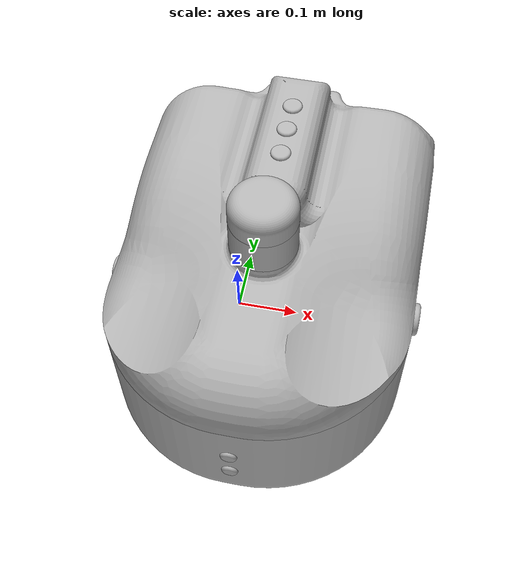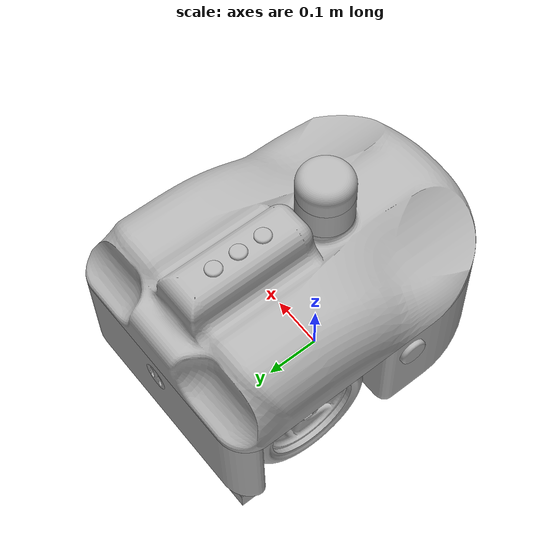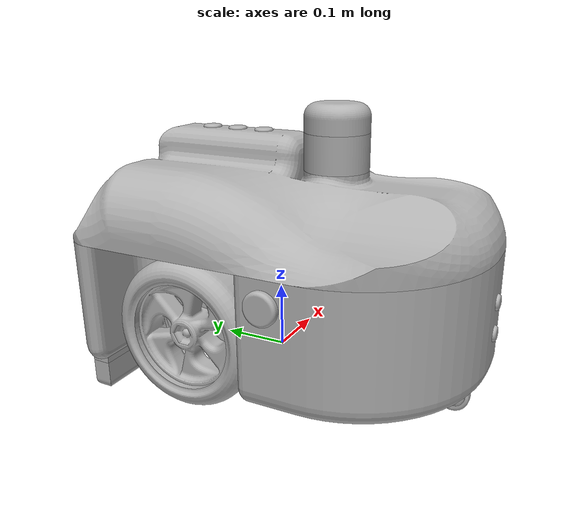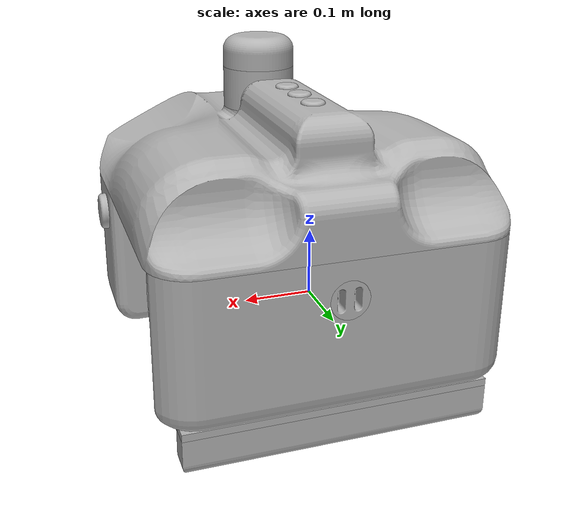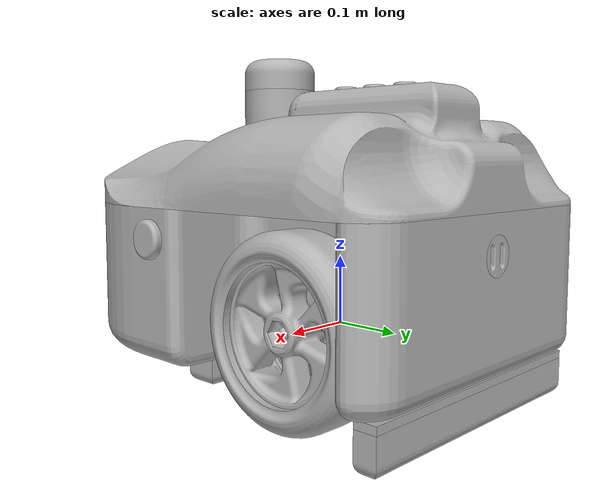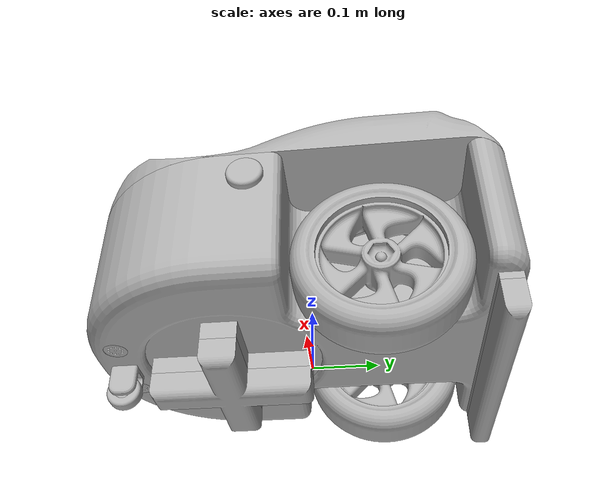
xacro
<?xml version="1.0" ?>
<robot name="cleaning" xmlns:xacro="http://www.ros.org/wiki/xacro">

<xacro:include filename="$(find cleaning_description)/urdf/materials.xacro" />
<xacro:include filename="$(find cleaning_description)/urdf/cleaning.trans" />
<xacro:include filename="$(find cleaning_description)/urdf/cleaning.gazebo" />
<link name="base_link">
  <inertial>
    <origin xyz="0.058313304303346955 -0.015230594439995492 0.05613540854001533" rpy="0 0 0"/>
    <mass value="54.76161083841736"/>
    <inertia ixx="2.371896" iyy="1.181941" izz="3.1265" ixy="-0.0" iyz="-0.061127" ixz="-0.0"/>
  </inertial>
  <visual>
    <origin xyz="0 0 0" rpy="0 0 0"/>
    <geometry>
      <mesh filename="package://cleaning_description/meshes/base_link.stl" scale="0.001 0.001 0.001"/>
    </geometry>
    <material name="silver"/>
  </visual>
  <collision>
    <origin xyz="0 0 0" rpy="0 0 0"/>
    <geometry>
      <mesh filename="package://cleaning_description/meshes/base_link.stl" scale="0.001 0.001 0.001"/>
    </geometry>
  </collision>
</link>

<link name="left_motor_1">
  <inertial>
    <origin xyz="0.0016011540332543789 4.1376184034547236e-08 0.05000033555353705" rpy="0 0 0"/>
    <mass value="10.828701584350123"/>
    <inertia ixx="0.02872" iyy="0.017336" izz="0.028375" ixy="0.0" iyz="0.0" ixz="-0.0"/>
  </inertial>
  <visual>
    <origin xyz="-0.112725 -0.108724 0.009452" rpy="0 0 0"/>
    <geometry>
      <mesh filename="package://cleaning_description/meshes/left_motor_1.stl" scale="0.001 0.001 0.001"/>
    </geometry>
    <material name="silver"/>
  </visual>
  <collision>
    <origin xyz="-0.112725 -0.108724 0.009452" rpy="0 0 0"/>
    <geometry>
      <mesh filename="package://cleaning_description/meshes/left_motor_1.stl" scale="0.001 0.001 0.001"/>
    </geometry>
  </collision>
</link>

<link name="right_motor_1">
  <inertial>
    <origin xyz="-0.001601563486938557 4.1376184048425024e-08 0.05000033555353705" rpy="0 0 0"/>
    <mass value="10.82870158435012"/>
    <inertia ixx="0.02872" iyy="0.017336" izz="0.028375" ixy="0.0" iyz="0.0" ixz="0.0"/>
  </inertial>
  <visual>
    <origin xyz="-0.003902 -0.108724 0.009452" rpy="0 0 0"/>
    <geometry>
      <mesh filename="package://cleaning_description/meshes/right_motor_1.stl" scale="0.001 0.001 0.001"/>
    </geometry>
    <material name="silver"/>
  </visual>
  <collision>
    <origin xyz="-0.003902 -0.108724 0.009452" rpy="0 0 0"/>
    <geometry>
      <mesh filename="package://cleaning_description/meshes/right_motor_1.stl" scale="0.001 0.001 0.001"/>
    </geometry>
  </collision>
</link>

<link name="front_motor_1">
  <inertial>
    <origin xyz="2.9527315768135276e-07 3.3957881728774453e-07 0.03450033555353704" rpy="0 0 0"/>
    <mass value="18.760621360506445"/>
    <inertia ixx="0.059152" iyy="0.059152" izz="0.103418" ixy="0.0" iyz="0.0" ixz="0.0"/>
  </inertial>
  <visual>
    <origin xyz="-0.058313 0.111315 -0.021548" rpy="0 0 0"/>
    <geometry>
      <mesh filename="package://cleaning_description/meshes/front_motor_1.stl" scale="0.001 0.001 0.001"/>
    </geometry>
    <material name="silver"/>
  </visual>
  <collision>
    <origin xyz="-0.058313 0.111315 -0.021548" rpy="0 0 0"/>
    <geometry>
      <mesh filename="package://cleaning_description/meshes/front_motor_1.stl" scale="0.001 0.001 0.001"/>
    </geometry>
  </collision>
</link>

<link name="battery_base_1">
  <inertial>
    <origin xyz="0.09203709793147288 -1.2343095048827912e-07 -0.0003199233639099158" rpy="0 0 0"/>
    <mass value="2.9781372134875"/>
    <inertia ixx="0.012406" iyy="0.008632" izz="0.020995" ixy="0.0" iyz="0.0" ixz="0.0"/>
  </inertial>
  <visual>
    <origin xyz="0.033724 -0.103339 -0.095548" rpy="0 0 0"/>
    <geometry>
      <mesh filename="package://cleaning_description/meshes/battery_base_1.stl" scale="0.001 0.001 0.001"/>
    </geometry>
    <material name="silver"/>
  </visual>
  <collision>
    <origin xyz="0.033724 -0.103339 -0.095548" rpy="0 0 0"/>
    <geometry>
      <mesh filename="package://cleaning_description/meshes/battery_base_1.stl" scale="0.001 0.001 0.001"/>
    </geometry>
  </collision>
</link>

<link name="battery_1">
  <inertial>
    <origin xyz="2.9527315793115294e-07 -1.2343095047440134e-07 0.03500033555353704" rpy="0 0 0"/>
    <mass value="14.836499999999997"/>
    <inertia ixx="0.046117" iyy="0.033877" izz="0.067877" ixy="0.0" iyz="0.0" ixz="0.0"/>
  </inertial>
  <visual>
    <origin xyz="-0.058313 -0.103339 -0.099548" rpy="0 0 0"/>
    <geometry>
      <mesh filename="package://cleaning_description/meshes/battery_1.stl" scale="0.001 0.001 0.001"/>
    </geometry>
    <material name="silver"/>
  </visual>
  <collision>
    <origin xyz="-0.058313 -0.103339 -0.099548" rpy="0 0 0"/>
    <geometry>
      <mesh filename="package://cleaning_description/meshes/battery_1.stl" scale="0.001 0.001 0.001"/>
    </geometry>
  </collision>
</link>

<link name="charging_port_1">
  <inertial>
    <origin xyz="-0.00010178009298021651 -0.01617903306030516 3.3555353703973445e-07" rpy="0 0 0"/>
    <mass value="0.37493220914312686"/>
    <inertia ixx="9.5e-05" iyy="0.000129" izz="9.1e-05" ixy="0.0" iyz="0.0" ixz="0.0"/>
  </inertial>
  <visual>
    <origin xyz="-0.058313 -0.288441 -0.131548" rpy="0 0 0"/>
    <geometry>
      <mesh filename="package://cleaning_description/meshes/charging_port_1.stl" scale="0.001 0.001 0.001"/>
    </geometry>
    <material name="silver"/>
  </visual>
  <collision>
    <origin xyz="-0.058313 -0.288441 -0.131548" rpy="0 0 0"/>
    <geometry>
      <mesh filename="package://cleaning_description/meshes/charging_port_1.stl" scale="0.001 0.001 0.001"/>
    </geometry>
  </collision>
</link>

<link name="rear_wiper_motor_1">
  <inertial>
    <origin xyz="2.9527315812544197e-07 5.856211737764738e-09 0.009210861869326485" rpy="0 0 0"/>
    <mass value="0.11714213607072968"/>
    <inertia ixx="1.1e-05" iyy="1.1e-05" izz="1.3e-05" ixy="0.0" iyz="0.0" ixz="-0.0"/>
  </inertial>
  <visual>
    <origin xyz="-0.058313 -0.258441 0.008452" rpy="0 0 0"/>
    <geometry>
      <mesh filename="package://cleaning_description/meshes/rear_wiper_motor_1.stl" scale="0.001 0.001 0.001"/>
    </geometry>
    <material name="silver"/>
  </visual>
  <collision>
    <origin xyz="-0.058313 -0.258441 0.008452" rpy="0 0 0"/>
    <geometry>
      <mesh filename="package://cleaning_description/meshes/rear_wiper_motor_1.stl" scale="0.001 0.001 0.001"/>
    </geometry>
  </collision>
</link>

<link name="mixing_water_container_1">
  <inertial>
    <origin xyz="-0.030329665713304976 0.07150016237721724 0.08474270310992932" rpy="0 0 0"/>
    <mass value="6.685423159995114"/>
    <inertia ixx="0.076392" iyy="0.049979" izz="0.083597" ixy="-0.026993" iyz="-0.000597" ixz="-0.000128"/>
  </inertial>
  <visual>
    <origin xyz="-0.210406 0.244651 0.008452" rpy="0 0 0"/>
    <geometry>
      <mesh filename="package://cleaning_description/meshes/mixing_water_container_1.stl" scale="0.001 0.001 0.001"/>
    </geometry>
    <material name="silver"/>
  </visual>
  <collision>
    <origin xyz="-0.210406 0.244651 0.008452" rpy="0 0 0"/>
    <geometry>
      <mesh filename="package://cleaning_description/meshes/mixing_water_container_1.stl" scale="0.001 0.001 0.001"/>
    </geometry>
  </collision>
</link>

<link name="water_container_1">
  <inertial>
    <origin xyz="0.03589632073185816 0.0673580445124351 0.07953301958158605" rpy="0 0 0"/>
    <mass value="7.036433584291923"/>
    <inertia ixx="0.083947" iyy="0.058806" izz="0.091836" ixy="0.030871" iyz="-0.00413" ixz="0.004453"/>
  </inertial>
  <visual>
    <origin xyz="0.093779 0.244651 0.008452" rpy="0 0 0"/>
    <geometry>
      <mesh filename="package://cleaning_description/meshes/water_container_1.stl" scale="0.001 0.001 0.001"/>
    </geometry>
    <material name="silver"/>
  </visual>
  <collision>
    <origin xyz="0.093779 0.244651 0.008452" rpy="0 0 0"/>
    <geometry>
      <mesh filename="package://cleaning_description/meshes/water_container_1.stl" scale="0.001 0.001 0.001"/>
    </geometry>
  </collision>
</link>

<link name="liquid_mixing_motor_1">
  <inertial>
    <origin xyz="-2.871435284823587e-07 -0.015681776805634172 3.3555353703973445e-07" rpy="0 0 0"/>
    <mass value="0.6866687055198686"/>
    <inertia ixx="0.000211" iyy="0.0003" izz="0.000211" ixy="0.0" iyz="-0.0" ixz="0.0"/>
  </inertial>
  <visual>
    <origin xyz="-0.219326 0.035276 -0.094548" rpy="0 0 0"/>
    <geometry>
      <mesh filename="package://cleaning_description/meshes/liquid_mixing_motor_1.stl" scale="0.001 0.001 0.001"/>
    </geometry>
    <material name="silver"/>
  </visual>
  <collision>
    <origin xyz="-0.219326 0.035276 -0.094548" rpy="0 0 0"/>
    <geometry>
      <mesh filename="package://cleaning_description/meshes/liquid_mixing_motor_1.stl" scale="0.001 0.001 0.001"/>
    </geometry>
  </collision>
</link>

<link name="liquid_mixing_motor_blade_base_1">
  <inertial>
    <origin xyz="-2.8714362981796526e-07 0.0025000413761840506 3.355535370952456e-07" rpy="0 0 0"/>
    <mass value="0.07013114725287062"/>
    <inertia ixx="1.2e-05" iyy="2.4e-05" izz="1.2e-05" ixy="0.0" iyz="0.0" ixz="0.0"/>
  </inertial>
  <visual>
    <origin xyz="-0.219326 0.080276 -0.094548" rpy="0 0 0"/>
    <geometry>
      <mesh filename="package://cleaning_description/meshes/liquid_mixing_motor_blade_base_1.stl" scale="0.001 0.001 0.001"/>
    </geometry>
    <material name="silver"/>
  </visual>
  <collision>
    <origin xyz="-0.219326 0.080276 -0.094548" rpy="0 0 0"/>
    <geometry>
      <mesh filename="package://cleaning_description/meshes/liquid_mixing_motor_blade_base_1.stl" scale="0.001 0.001 0.001"/>
    </geometry>
  </collision>
</link>

<link name="liquid_mixing_motor_blade_1">
  <inertial>
    <origin xyz="-2.871436705353947e-07 -0.0020566895554743614 3.3555353702585666e-07" rpy="0 0 0"/>
    <mass value="0.04603639439574029"/>
    <inertia ixx="7e-06" iyy="1.4e-05" izz="7e-06" ixy="-0.0" iyz="0.0" ixz="-0.0"/>
  </inertial>
  <visual>
    <origin xyz="-0.219326 0.080276 -0.094548" rpy="0 0 0"/>
    <geometry>
      <mesh filename="package://cleaning_description/meshes/liquid_mixing_motor_blade_1.stl" scale="0.001 0.001 0.001"/>
    </geometry>
    <material name="silver"/>
  </visual>
  <collision>
    <origin xyz="-0.219326 0.080276 -0.094548" rpy="0 0 0"/>
    <geometry>
      <mesh filename="package://cleaning_description/meshes/liquid_mixing_motor_blade_1.stl" scale="0.001 0.001 0.001"/>
    </geometry>
  </collision>
</link>

<link name="mixing_water_container_lid_1">
  <inertial>
    <origin xyz="-0.02269201641014984 0.07240943616857537 0.002500335553537042" rpy="0 0 0"/>
    <mass value="1.0136541846429816"/>
    <inertia ixx="0.006439" iyy="0.00297" izz="0.009404" ixy="-0.003256" iyz="0.0" ixz="0.0"/>
  </inertial>
  <visual>
    <origin xyz="-0.210406 0.244651 -0.174548" rpy="0 0 0"/>
    <geometry>
      <mesh filename="package://cleaning_description/meshes/mixing_water_container_lid_1.stl" scale="0.001 0.001 0.001"/>
    </geometry>
    <material name="silver"/>
  </visual>
  <collision>
    <origin xyz="-0.210406 0.244651 -0.174548" rpy="0 0 0"/>
    <geometry>
      <mesh filename="package://cleaning_description/meshes/mixing_water_container_lid_1.stl" scale="0.001 0.001 0.001"/>
    </geometry>
  </collision>
</link>

<link name="water_container_lid_1">
  <inertial>
    <origin xyz="0.022691606956465063 0.07240943616857551 0.002500335553537042" rpy="0 0 0"/>
    <mass value="1.0136541846429814"/>
    <inertia ixx="0.006439" iyy="0.00297" izz="0.009404" ixy="0.003256" iyz="0.0" ixz="0.0"/>
  </inertial>
  <visual>
    <origin xyz="0.093779 0.244651 -0.174548" rpy="0 0 0"/>
    <geometry>
      <mesh filename="package://cleaning_description/meshes/water_container_lid_1.stl" scale="0.001 0.001 0.001"/>
    </geometry>
    <material name="silver"/>
  </visual>
  <collision>
    <origin xyz="0.093779 0.244651 -0.174548" rpy="0 0 0"/>
    <geometry>
      <mesh filename="package://cleaning_description/meshes/water_container_lid_1.stl" scale="0.001 0.001 0.001"/>
    </geometry>
  </collision>
</link>

<link name="top_front_botton_1">
  <inertial>
    <origin xyz="2.952731577646195e-07 5.0663418071916766e-08 0.004816630700308411" rpy="0 0 0"/>
    <mass value="0.05309934209418181"/>
    <inertia ixx="3e-06" iyy="3e-06" izz="6e-06" ixy="0.0" iyz="0.0" ixz="-0.0"/>
  </inertial>
  <visual>
    <origin xyz="-0.058313 -0.059676 -0.325548" rpy="0 0 0"/>
    <geometry>
      <mesh filename="package://cleaning_description/meshes/top_front_botton_1.stl" scale="0.001 0.001 0.001"/>
    </geometry>
    <material name="silver"/>
  </visual>
  <collision>
    <origin xyz="-0.058313 -0.059676 -0.325548" rpy="0 0 0"/>
    <geometry>
      <mesh filename="package://cleaning_description/meshes/top_front_botton_1.stl" scale="0.001 0.001 0.001"/>
    </geometry>
  </collision>
</link>

<link name="top_mid_buttom_1">
  <inertial>
    <origin xyz="2.9527315769523055e-07 1.8601420835595572e-07 0.004816630700308411" rpy="0 0 0"/>
    <mass value="0.0530993420941818"/>
    <inertia ixx="3e-06" iyy="3e-06" izz="6e-06" ixy="0.0" iyz="-0.0" ixz="0.0"/>
  </inertial>
  <visual>
    <origin xyz="-0.058313 -0.107711 -0.325548" rpy="0 0 0"/>
    <geometry>
      <mesh filename="package://cleaning_description/meshes/top_mid_buttom_1.stl" scale="0.001 0.001 0.001"/>
    </geometry>
    <material name="silver"/>
  </visual>
  <collision>
    <origin xyz="-0.058313 -0.107711 -0.325548" rpy="0 0 0"/>
    <geometry>
      <mesh filename="package://cleaning_description/meshes/top_mid_buttom_1.stl" scale="0.001 0.001 0.001"/>
    </geometry>
  </collision>
</link>

<link name="top_back_button_1">
  <inertial>
    <origin xyz="2.952731578895196e-07 -3.5879302540120506e-07 0.004816630700308411" rpy="0 0 0"/>
    <mass value="0.0530993420941818"/>
    <inertia ixx="3e-06" iyy="3e-06" izz="6e-06" ixy="0.0" iyz="0.0" ixz="0.0"/>
  </inertial>
  <visual>
    <origin xyz="-0.058313 -0.155718 -0.325548" rpy="0 0 0"/>
    <geometry>
      <mesh filename="package://cleaning_description/meshes/top_back_button_1.stl" scale="0.001 0.001 0.001"/>
    </geometry>
    <material name="silver"/>
  </visual>
  <collision>
    <origin xyz="-0.058313 -0.155718 -0.325548" rpy="0 0 0"/>
    <geometry>
      <mesh filename="package://cleaning_description/meshes/top_back_button_1.stl" scale="0.001 0.001 0.001"/>
    </geometry>
  </collision>
</link>

<link name="top_body_1">
  <inertial>
    <origin xyz="2.956470174161896e-07 0.04222472026673674 0.04714612335749818" rpy="0 0 0"/>
    <mass value="161.3221769861006"/>
    <inertia ixx="3.821764" iyy="2.215417" izz="5.696169" ixy="1e-06" iyz="-0.175246" ixz="0.0"/>
  </inertial>
  <visual>
    <origin xyz="-0.058313 0.016359 -0.181548" rpy="0 0 0"/>
    <geometry>
      <mesh filename="package://cleaning_description/meshes/top_body_1.stl" scale="0.001 0.001 0.001"/>
    </geometry>
    <material name="silver"/>
  </visual>
  <collision>
    <origin xyz="-0.058313 0.016359 -0.181548" rpy="0 0 0"/>
    <geometry>
      <mesh filename="package://cleaning_description/meshes/top_body_1.stl" scale="0.001 0.001 0.001"/>
    </geometry>
  </collision>
</link>

<link name="water_container_cap_1">
  <inertial>
    <origin xyz="-0.016396655246805253 -4.763838157423317e-07 -1.6444646300239896e-07" rpy="0 0 0"/>
    <mass value="0.3427901670674076"/>
    <inertia ixx="8.3e-05" iyy="6.8e-05" izz="6.8e-05" ixy="0.0" iyz="0.0" ixz="-0.0"/>
  </inertial>
  <visual>
    <origin xyz="0.150287 0.063717 -0.142107" rpy="0 0 0"/>
    <geometry>
      <mesh filename="package://cleaning_description/meshes/water_container_cap_1.stl" scale="0.001 0.001 0.001"/>
    </geometry>
    <material name="silver"/>
  </visual>
  <collision>
    <origin xyz="0.150287 0.063717 -0.142107" rpy="0 0 0"/>
    <geometry>
      <mesh filename="package://cleaning_description/meshes/water_container_cap_1.stl" scale="0.001 0.001 0.001"/>
    </geometry>
  </collision>
</link>

<link name="mixing_water_container_cap_1">
  <inertial>
    <origin xyz="0.01639724579312063 -4.7638381589498735e-07 -1.6444646300239896e-07" rpy="0 0 0"/>
    <mass value="0.34279016706740756"/>
    <inertia ixx="8.3e-05" iyy="6.8e-05" izz="6.8e-05" ixy="0.0" iyz="0.0" ixz="0.0"/>
  </inertial>
  <visual>
    <origin xyz="-0.266913 0.063717 -0.142107" rpy="0 0 0"/>
    <geometry>
      <mesh filename="package://cleaning_description/meshes/mixing_water_container_cap_1.stl" scale="0.001 0.001 0.001"/>
    </geometry>
    <material name="silver"/>
  </visual>
  <collision>
    <origin xyz="-0.266913 0.063717 -0.142107" rpy="0 0 0"/>
    <geometry>
      <mesh filename="package://cleaning_description/meshes/mixing_water_container_cap_1.stl" scale="0.001 0.001 0.001"/>
    </geometry>
  </collision>
</link>

<link name="right_wheel_1">
  <inertial>
    <origin xyz="0.011832266255614829 -4.533670386663857e-06 -1.5005397828837808e-05" rpy="0 0 0"/>
    <mass value="5.016213936854125"/>
    <inertia ixx="0.020891" iyy="0.011227" izz="0.011229" ixy="0.0" iyz="1e-06" ixz="-0.0"/>
  </inertial>
  <visual>
    <origin xyz="0.101098 -0.108724 -0.040548" rpy="0 0 0"/>
    <geometry>
      <mesh filename="package://cleaning_description/meshes/right_wheel_1.stl" scale="0.001 0.001 0.001"/>
    </geometry>
    <material name="silver"/>
  </visual>
  <collision>
    <origin xyz="0.101098 -0.108724 -0.040548" rpy="0 0 0"/>
    <geometry>
      <mesh filename="package://cleaning_description/meshes/right_wheel_1.stl" scale="0.001 0.001 0.001"/>
    </geometry>
  </collision>
</link>

<link name="left_wheel_1">
  <inertial>
    <origin xyz="-0.0118326266092951 -4.3958964564966285e-06 -1.4905830706728185e-05" rpy="0 0 0"/>
    <mass value="5.0162154535608305"/>
    <inertia ixx="0.020891" iyy="0.011227" izz="0.011229" ixy="-0.0" iyz="1e-06" ixz="0.0"/>
  </inertial>
  <visual>
    <origin xyz="-0.217725 -0.108724 -0.040548" rpy="0 0 0"/>
    <geometry>
      <mesh filename="package://cleaning_description/meshes/left_wheel_1.stl" scale="0.001 0.001 0.001"/>
    </geometry>
    <material name="silver"/>
  </visual>
  <collision>
    <origin xyz="-0.217725 -0.108724 -0.040548" rpy="0 0 0"/>
    <geometry>
      <mesh filename="package://cleaning_description/meshes/left_wheel_1.stl" scale="0.001 0.001 0.001"/>
    </geometry>
  </collision>
</link>

<link name="right_tyre_1">
  <inertial>
    <origin xyz="-3.889571081189258e-07 4.1376184117813963e-08 3.355535370813678e-07" rpy="0 0 0"/>
    <mass value="13.208345588113446"/>
    <inertia ixx="0.140179" iyy="0.076538" izz="0.076538" ixy="0.0" iyz="0.0" ixz="-0.0"/>
  </inertial>
  <visual>
    <origin xyz="0.089224 -0.108724 -0.040548" rpy="0 0 0"/>
    <geometry>
      <mesh filename="package://cleaning_description/meshes/right_tyre_1.stl" scale="0.001 0.001 0.001"/>
    </geometry>
    <material name="silver"/>
  </visual>
  <collision>
    <origin xyz="0.089224 -0.108724 -0.040548" rpy="0 0 0"/>
    <geometry>
      <mesh filename="package://cleaning_description/meshes/right_tyre_1.stl" scale="0.001 0.001 0.001"/>
    </geometry>
  </collision>
</link>

<link name="left_tyre_1">
  <inertial>
    <origin xyz="-2.0496575992012822e-08 4.1376184034547236e-08 3.355535370883067e-07" rpy="0 0 0"/>
    <mass value="13.208345588113465"/>
    <inertia ixx="0.140179" iyy="0.076538" izz="0.076538" ixy="0.0" iyz="0.0" ixz="0.0"/>
  </inertial>
  <visual>
    <origin xyz="-0.205851 -0.108724 -0.040548" rpy="0 0 0"/>
    <geometry>
      <mesh filename="package://cleaning_description/meshes/left_tyre_1.stl" scale="0.001 0.001 0.001"/>
    </geometry>
    <material name="silver"/>
  </visual>
  <collision>
    <origin xyz="-0.205851 -0.108724 -0.040548" rpy="0 0 0"/>
    <geometry>
      <mesh filename="package://cleaning_description/meshes/left_tyre_1.stl" scale="0.001 0.001 0.001"/>
    </geometry>
  </collision>
</link>

<link name="rear_wiper_base_1">
  <inertial>
    <origin xyz="2.952731581115642e-07 5.8561808180535024e-09 -0.004999664446462944" rpy="0 0 0"/>
    <mass value="0.9358346244173298"/>
    <inertia ixx="7.8e-05" iyy="0.012568" izz="0.012631" ixy="0.0" iyz="0.0" ixz="0.0"/>
  </inertial>
  <visual>
    <origin xyz="-0.058313 -0.258441 0.018452" rpy="0 0 0"/>
    <geometry>
      <mesh filename="package://cleaning_description/meshes/rear_wiper_base_1.stl" scale="0.001 0.001 0.001"/>
    </geometry>
    <material name="silver"/>
  </visual>
  <collision>
    <origin xyz="-0.058313 -0.258441 0.018452" rpy="0 0 0"/>
    <geometry>
      <mesh filename="package://cleaning_description/meshes/rear_wiper_base_1.stl" scale="0.001 0.001 0.001"/>
    </geometry>
  </collision>
</link>

<link name="rear_wiper_foam_1">
  <inertial>
    <origin xyz="2.9527315805605303e-07 5.856184870367542e-09 -0.023407045900391322" rpy="0 0 0"/>
    <mass value="4.4003504100972295"/>
    <inertia ixx="0.001135" iyy="0.059092" izz="0.058576" ixy="0.0" iyz="-0.0" ixz="-0.0"/>
  </inertial>
  <visual>
    <origin xyz="-0.058313 -0.258441 0.028452" rpy="0 0 0"/>
    <geometry>
      <mesh filename="package://cleaning_description/meshes/rear_wiper_foam_1.stl" scale="0.001 0.001 0.001"/>
    </geometry>
    <material name="silver"/>
  </visual>
  <collision>
    <origin xyz="-0.058313 -0.258441 0.028452" rpy="0 0 0"/>
    <geometry>
      <mesh filename="package://cleaning_description/meshes/rear_wiper_foam_1.stl" scale="0.001 0.001 0.001"/>
    </geometry>
  </collision>
</link>

<link name="front_top_sensor_1">
  <inertial>
    <origin xyz="2.952731574176748e-07 -0.004674554138165032 3.3555353705361224e-07" rpy="0 0 0"/>
    <mass value="0.03552138340949737"/>
    <inertia ixx="2e-06" iyy="3e-06" izz="2e-06" ixy="0.0" iyz="-0.0" ixz="0.0"/>
  </inertial>
  <visual>
    <origin xyz="-0.058313 0.316159 -0.111548" rpy="0 0 0"/>
    <geometry>
      <mesh filename="package://cleaning_description/meshes/front_top_sensor_1.stl" scale="0.001 0.001 0.001"/>
    </geometry>
    <material name="silver"/>
  </visual>
  <collision>
    <origin xyz="-0.058313 0.316159 -0.111548" rpy="0 0 0"/>
    <geometry>
      <mesh filename="package://cleaning_description/meshes/front_top_sensor_1.stl" scale="0.001 0.001 0.001"/>
    </geometry>
  </collision>
</link>

<link name="front_bottom_sensor_1">
  <inertial>
    <origin xyz="2.952731574176748e-07 -0.004674554138165032 3.3555353703279556e-07" rpy="0 0 0"/>
    <mass value="0.0355213834094974"/>
    <inertia ixx="2e-06" iyy="3e-06" izz="2e-06" ixy="0.0" iyz="0.0" ixz="0.0"/>
  </inertial>
  <visual>
    <origin xyz="-0.058313 0.316159 -0.061548" rpy="0 0 0"/>
    <geometry>
      <mesh filename="package://cleaning_description/meshes/front_bottom_sensor_1.stl" scale="0.001 0.001 0.001"/>
    </geometry>
    <material name="silver"/>
  </visual>
  <collision>
    <origin xyz="-0.058313 0.316159 -0.061548" rpy="0 0 0"/>
    <geometry>
      <mesh filename="package://cleaning_description/meshes/front_bottom_sensor_1.stl" scale="0.001 0.001 0.001"/>
    </geometry>
  </collision>
</link>

<link name="front_motor_gear_1">
  <inertial>
    <origin xyz="2.9527315767441387e-07 3.3957881728774453e-07 -0.014999664446462951" rpy="0 0 0"/>
    <mass value="0.3468023765251856"/>
    <inertia ixx="9.4e-05" iyy="9.4e-05" izz="0.000135" ixy="0.0" iyz="0.0" ixz="0.0"/>
  </inertial>
  <visual>
    <origin xyz="-0.058313 0.111315 -0.021548" rpy="0 0 0"/>
    <geometry>
      <mesh filename="package://cleaning_description/meshes/front_motor_gear_1.stl" scale="0.001 0.001 0.001"/>
    </geometry>
    <material name="silver"/>
  </visual>
  <collision>
    <origin xyz="-0.058313 0.111315 -0.021548" rpy="0 0 0"/>
    <geometry>
      <mesh filename="package://cleaning_description/meshes/front_motor_gear_1.stl" scale="0.001 0.001 0.001"/>
    </geometry>
  </collision>
</link>

<link name="front_motor_axcel_1">
  <inertial>
    <origin xyz="2.9527315767441387e-07 3.3957881727386674e-07 -0.019999664446462943" rpy="0 0 0"/>
    <mass value="0.15413438956674919"/>
    <inertia ixx="2.7e-05" iyy="2.7e-05" izz="1.2e-05" ixy="0.0" iyz="-0.0" ixz="-0.0"/>
  </inertial>
  <visual>
    <origin xyz="-0.058313 0.111315 -0.021548" rpy="0 0 0"/>
    <geometry>
      <mesh filename="package://cleaning_description/meshes/front_motor_axcel_1.stl" scale="0.001 0.001 0.001"/>
    </geometry>
    <material name="silver"/>
  </visual>
  <collision>
    <origin xyz="-0.058313 0.111315 -0.021548" rpy="0 0 0"/>
    <geometry>
      <mesh filename="package://cleaning_description/meshes/front_motor_axcel_1.stl" scale="0.001 0.001 0.001"/>
    </geometry>
  </collision>
</link>

<link name="front_cleaning_blade_1">
  <inertial>
    <origin xyz="2.9527315769523055e-07 3.3957878586843293e-07 -0.007547785028479484" rpy="0 0 0"/>
    <mass value="4.003858201304152"/>
    <inertia ixx="0.010524" iyy="0.010524" izz="0.020633" ixy="0.0" iyz="0.0" ixz="0.0"/>
  </inertial>
  <visual>
    <origin xyz="-0.058313 0.111315 0.018452" rpy="0 0 0"/>
    <geometry>
      <mesh filename="package://cleaning_description/meshes/front_cleaning_blade_1.stl" scale="0.001 0.001 0.001"/>
    </geometry>
    <material name="silver"/>
  </visual>
  <collision>
    <origin xyz="-0.058313 0.111315 0.018452" rpy="0 0 0"/>
    <geometry>
      <mesh filename="package://cleaning_description/meshes/front_cleaning_blade_1.stl" scale="0.001 0.001 0.001"/>
    </geometry>
  </collision>
</link>

<link name="front_cleaning_foam_1">
  <inertial>
    <origin xyz="2.952731576605361e-07 3.3957881728774453e-07 -0.01907767606518388" rpy="0 0 0"/>
    <mass value="6.098442604880595"/>
    <inertia ixx="0.016082" iyy="0.016082" izz="0.030651" ixy="0.0" iyz="-0.0" ixz="0.0"/>
  </inertial>
  <visual>
    <origin xyz="-0.058313 0.111315 0.038452" rpy="0 0 0"/>
    <geometry>
      <mesh filename="package://cleaning_description/meshes/front_cleaning_foam_1.stl" scale="0.001 0.001 0.001"/>
    </geometry>
    <material name="silver"/>
  </visual>
  <collision>
    <origin xyz="-0.058313 0.111315 0.038452" rpy="0 0 0"/>
    <geometry>
      <mesh filename="package://cleaning_description/meshes/front_cleaning_foam_1.stl" scale="0.001 0.001 0.001"/>
    </geometry>
  </collision>
</link>

<link name="front_caster_wheel_1">
  <inertial>
    <origin xyz="2.952731574384915e-07 -2.369129574186779e-07 3.355535370744289e-07" rpy="0 0 0"/>
    <mass value="0.049323004661359714"/>
    <inertia ixx="5e-06" iyy="4e-06" izz="4e-06" ixy="0.0" iyz="-0.0" ixz="-0.0"/>
  </inertial>
  <visual>
    <origin xyz="-0.058313 0.27104 0.05445" rpy="0 0 0"/>
    <geometry>
      <mesh filename="package://cleaning_description/meshes/front_caster_wheel_1.stl" scale="0.001 0.001 0.001"/>
    </geometry>
    <material name="silver"/>
  </visual>
  <collision>
    <origin xyz="-0.058313 0.27104 0.05445" rpy="0 0 0"/>
    <geometry>
      <mesh filename="package://cleaning_description/meshes/front_caster_wheel_1.stl" scale="0.001 0.001 0.001"/>
    </geometry>
  </collision>
</link>

<link name="front_caster_tyre_1">
  <inertial>
    <origin xyz="2.952731574384915e-07 -2.369129575297002e-07 3.3555353706055113e-07" rpy="0 0 0"/>
    <mass value="0.21856165176881648"/>
    <inertia ixx="8.3e-05" iyy="4.8e-05" izz="4.8e-05" ixy="0.0" iyz="0.0" ixz="0.0"/>
  </inertial>
  <visual>
    <origin xyz="-0.058313 0.27104 0.05445" rpy="0 0 0"/>
    <geometry>
      <mesh filename="package://cleaning_description/meshes/front_caster_tyre_1.stl" scale="0.001 0.001 0.001"/>
    </geometry>
    <material name="silver"/>
  </visual>
  <collision>
    <origin xyz="-0.058313 0.27104 0.05445" rpy="0 0 0"/>
    <geometry>
      <mesh filename="package://cleaning_description/meshes/front_caster_tyre_1.stl" scale="0.001 0.001 0.001"/>
    </geometry>
  </collision>
</link>

<link name="lidar_base_1">
  <inertial>
    <origin xyz="-0.058313704725144265 0.01635900578301637 0.04695133555353703" rpy="0 0 0"/>
    <mass value="3.514670794783126"/>
    <inertia ixx="0.003148" iyy="0.003149" izz="0.004394" ixy="0.0" iyz="0.0" ixz="0.0"/>
  </inertial>
  <visual>
    <origin xyz="-0.116627 0.082718 -0.262097" rpy="0 0 0"/>
    <geometry>
      <mesh filename="package://cleaning_description/meshes/lidar_base_1.stl" scale="0.001 0.001 0.001"/>
    </geometry>
    <material name="silver"/>
  </visual>
  <collision>
    <origin xyz="-0.116627 0.082718 -0.262097" rpy="0 0 0"/>
    <geometry>
      <mesh filename="package://cleaning_description/meshes/lidar_base_1.stl" scale="0.001 0.001 0.001"/>
    </geometry>
  </collision>
</link>

<link name="lidar_1">
  <inertial>
    <origin xyz="2.952731529698438e-07 5.814961581696032e-09 0.020178888448717347" rpy="0 0 0"/>
    <mass value="2.4583298036611483"/>
    <inertia ixx="0.0018" iyy="0.0018" izz="0.002906" ixy="0.0" iyz="-0.0" ixz="-0.0"/>
  </inertial>
  <visual>
    <origin xyz="-0.058313 0.066359 -0.337548" rpy="0 0 0"/>
    <geometry>
      <mesh filename="package://cleaning_description/meshes/lidar_1.stl" scale="0.001 0.001 0.001"/>
    </geometry>
    <material name="silver"/>
  </visual>
  <collision>
    <origin xyz="-0.058313 0.066359 -0.337548" rpy="0 0 0"/>
    <geometry>
      <mesh filename="package://cleaning_description/meshes/lidar_1.stl" scale="0.001 0.001 0.001"/>
    </geometry>
  </collision>
</link>

<joint name="left_motor_joint" type="fixed">
  <origin xyz="0.112725 0.108724 -0.009452" rpy="0 0 0"/>
  <parent link="base_link"/>
  <child link="left_motor_1"/>
</joint>

<joint name="right_motor_joint" type="fixed">
  <origin xyz="0.003902 0.108724 -0.009452" rpy="0 0 0"/>
  <parent link="base_link"/>
  <child link="right_motor_1"/>
</joint>

<joint name="front_motor_joint" type="fixed">
  <origin xyz="0.058313 -0.111315 0.021548" rpy="0 0 0"/>
  <parent link="base_link"/>
  <child link="front_motor_1"/>
</joint>

<joint name="battery_base_joint" type="fixed">
  <origin xyz="-0.033724 0.103339 0.095548" rpy="0 0 0"/>
  <parent link="base_link"/>
  <child link="battery_base_1"/>
</joint>

<joint name="battery_joint" type="fixed">
  <origin xyz="0.092037 0.0 0.004" rpy="0 0 0"/>
  <parent link="battery_base_1"/>
  <child link="battery_1"/>
</joint>

<joint name="charging_port_joint" type="fixed">
  <origin xyz="0.058313 0.288441 0.131548" rpy="0 0 0"/>
  <parent link="base_link"/>
  <child link="charging_port_1"/>
</joint>

<joint name="back_wiper_motor" type="fixed">
  <origin xyz="0.058313 0.258441 -0.008452" rpy="0 0 0"/>
  <parent link="base_link"/>
  <child link="rear_wiper_motor_1"/>
</joint>

<joint name="mixing_water_container_joint" type="fixed">
  <origin xyz="0.210406 -0.244651 -0.008452" rpy="0 0 0"/>
  <parent link="base_link"/>
  <child link="mixing_water_container_1"/>
</joint>

<joint name="water_container_joint" type="fixed">
  <origin xyz="-0.093779 -0.244651 -0.008452" rpy="0 0 0"/>
  <parent link="base_link"/>
  <child link="water_container_1"/>
</joint>

<joint name="liquid_mixing_motor_joint" type="fixed">
  <origin xyz="0.00892 0.209375 0.103" rpy="0 0 0"/>
  <parent link="mixing_water_container_1"/>
  <child link="liquid_mixing_motor_1"/>
</joint>

<joint name="liquid_mixing_motor_blade_base_joint" type="continuous">
  <origin xyz="0.0 -0.045 0.0" rpy="0 0 0"/>
  <parent link="liquid_mixing_motor_1"/>
  <child link="liquid_mixing_motor_blade_base_1"/>
  <axis xyz="-0.0 -1.0 -0.0"/>
</joint>

<joint name="liquid_mixing_motor_blade" type="fixed">
  <origin xyz="0.0 0.0 0.0" rpy="0 0 0"/>
  <parent link="liquid_mixing_motor_blade_base_1"/>
  <child link="liquid_mixing_motor_blade_1"/>
</joint>

<joint name="mixing_water_container_lid_joint" type="fixed">
  <origin xyz="0.0 0.0 0.183" rpy="0 0 0"/>
  <parent link="mixing_water_container_1"/>
  <child link="mixing_water_container_lid_1"/>
</joint>

<joint name="water_container_lid_joint" type="fixed">
  <origin xyz="0.0 0.0 0.183" rpy="0 0 0"/>
  <parent link="water_container_1"/>
  <child link="water_container_lid_1"/>
</joint>

<joint name="top_front_button_joint" type="fixed">
  <origin xyz="0.0 0.076035 0.144" rpy="0 0 0"/>
  <parent link="top_body_1"/>
  <child link="top_front_botton_1"/>
</joint>

<joint name="top_mid_button_joint" type="fixed">
  <origin xyz="0.0 0.12407 0.144" rpy="0 0 0"/>
  <parent link="top_body_1"/>
  <child link="top_mid_buttom_1"/>
</joint>

<joint name="top_back_button_joint" type="fixed">
  <origin xyz="0.0 0.172077 0.144" rpy="0 0 0"/>
  <parent link="top_body_1"/>
  <child link="top_back_button_1"/>
</joint>

<joint name="top_base_joint" type="fixed">
  <origin xyz="0.058313 -0.016359 0.181548" rpy="0 0 0"/>
  <parent link="base_link"/>
  <child link="top_body_1"/>
</joint>

<joint name="water_container_cap_joint" type="fixed">
  <origin xyz="-0.056508 0.180934 0.150559" rpy="0 0 0"/>
  <parent link="water_container_1"/>
  <child link="water_container_cap_1"/>
</joint>

<joint name="mixing_water_container_cap_joint" type="fixed">
  <origin xyz="0.056507 0.180934 0.150559" rpy="0 0 0"/>
  <parent link="mixing_water_container_1"/>
  <child link="mixing_water_container_cap_1"/>
</joint>

<joint name="right_wheel_joint" type="continuous">
  <origin xyz="-0.105 0.0 0.05" rpy="0 0 0"/>
  <parent link="right_motor_1"/>
  <child link="right_wheel_1"/>
  <axis xyz="-1.0 0.0 0.0"/>
</joint>

<joint name="left_wheel_joint" type="continuous">
  <origin xyz="0.105 0.0 0.05" rpy="0 0 0"/>
  <parent link="left_motor_1"/>
  <child link="left_wheel_1"/>
  <axis xyz="1.0 -0.0 -0.0"/>
</joint>

<joint name="right_tyre_joint" type="fixed">
  <origin xyz="0.011874 0.0 0.0" rpy="0 0 0"/>
  <parent link="right_wheel_1"/>
  <child link="right_tyre_1"/>
</joint>

<joint name="left_tyre_joint" type="fixed">
  <origin xyz="-0.011874 0.0 0.0" rpy="0 0 0"/>
  <parent link="left_wheel_1"/>
  <child link="left_tyre_1"/>
</joint>

<joint name="rear_wiper_base_joint" type="revolute">
  <origin xyz="0.0 0.0 -0.01" rpy="0 0 0"/>
  <parent link="rear_wiper_motor_1"/>
  <child link="rear_wiper_base_1"/>
  <axis xyz="0.0 -0.0 1.0"/>
  <limit upper="0.087266" lower="-0.087266" effort="100" velocity="100"/>
</joint>

<joint name="rear_wiper_foam_joint" type="fixed">
  <origin xyz="0.0 0.0 -0.01" rpy="0 0 0"/>
  <parent link="rear_wiper_base_1"/>
  <child link="rear_wiper_foam_1"/>
</joint>

<joint name="front_top_sensor_joint" type="fixed">
  <origin xyz="0.058313 -0.316159 0.111548" rpy="0 0 0"/>
  <parent link="base_link"/>
  <child link="front_top_sensor_1"/>
</joint>

<joint name="front_button_sensor_joint" type="fixed">
  <origin xyz="0.058313 -0.316159 0.061548" rpy="0 0 0"/>
  <parent link="base_link"/>
  <child link="front_bottom_sensor_1"/>
</joint>

<joint name="front_motor_gear_joint" type="fixed">
  <origin xyz="0.0 0.0 0.0" rpy="0 0 0"/>
  <parent link="front_motor_1"/>
  <child link="front_motor_gear_1"/>
</joint>

<joint name="front_cleaning_blade_joint" type="continuous">
  <origin xyz="0.0 0.0 0.0" rpy="0 0 0"/>
  <parent link="front_motor_gear_1"/>
  <child link="front_motor_axcel_1"/>
  <axis xyz="0.0 -0.0 1.0"/>
</joint>

<joint name="front_cleaning_base_joint" type="fixed">
  <origin xyz="0.0 0.0 -0.04" rpy="0 0 0"/>
  <parent link="front_motor_axcel_1"/>
  <child link="front_cleaning_blade_1"/>
</joint>

<joint name="front_cleaning_foam_joint" type="fixed">
  <origin xyz="0.0 0.0 -0.02" rpy="0 0 0"/>
  <parent link="front_cleaning_blade_1"/>
  <child link="front_cleaning_foam_1"/>
</joint>

<joint name="front_caster_wheel_joint" type="continuous">
  <origin xyz="0.152092 -0.026389 -0.045998" rpy="0 0 0"/>
  <parent link="water_container_1"/>
  <child link="front_caster_wheel_1"/>
  <axis xyz="1.0 -0.0 -0.0"/>
</joint>

<joint name="front_caster_tyre_joint" type="fixed">
  <origin xyz="0.0 0.0 0.0" rpy="0 0 0"/>
  <parent link="front_caster_wheel_1"/>
  <child link="front_caster_tyre_1"/>
</joint>

<joint name="Rigid 36" type="fixed">
  <origin xyz="0.058314 -0.066359 0.080549" rpy="0 0 0"/>
  <parent link="top_body_1"/>
  <child link="lidar_base_1"/>
</joint>

<joint name="Rigid 37" type="fixed">
  <origin xyz="-0.058314 0.016359 0.075451" rpy="0 0 0"/>
  <parent link="lidar_base_1"/>
  <child link="lidar_1"/>
</joint>

</robot>

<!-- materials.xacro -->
<robot name="cleaning" xmlns:xacro="http://www.ros.org/wiki/xacro" >

<material name="silver">
  <color rgba="0.700 0.700 0.700 1.000"/>
</material>

</robot>

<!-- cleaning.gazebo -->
<robot name="cleaning" xmlns:xacro="http://www.ros.org/wiki/xacro" >

<xacro:property name="body_color" value="Gazebo/Silver" />

<gazebo>
  <plugin name="control" filename="libgazebo_ros_control.so"/>
</gazebo>
<gazebo reference="base_link">
  <material>${body_color}</material>
  <mu1>0.2</mu1>
  <mu2>0.2</mu2>
  <selfCollide>true</selfCollide>
  <gravity>true</gravity>
</gazebo>

<gazebo reference="left_motor_1">
  <material>${body_color}</material>
  <mu1>0.2</mu1>
  <mu2>0.2</mu2>
  <selfCollide>true</selfCollide>
</gazebo>

<gazebo reference="right_motor_1">
  <material>${body_color}</material>
  <mu1>0.2</mu1>
  <mu2>0.2</mu2>
  <selfCollide>true</selfCollide>
</gazebo>

<gazebo reference="front_motor_1">
  <material>${body_color}</material>
  <mu1>0.2</mu1>
  <mu2>0.2</mu2>
  <selfCollide>true</selfCollide>
</gazebo>

<gazebo reference="battery_base_1">
  <material>${body_color}</material>
  <mu1>0.2</mu1>
  <mu2>0.2</mu2>
  <selfCollide>true</selfCollide>
</gazebo>

<gazebo reference="battery_1">
  <material>${body_color}</material>
  <mu1>0.2</mu1>
  <mu2>0.2</mu2>
  <selfCollide>true</selfCollide>
</gazebo>

<gazebo reference="charging_port_1">
  <material>${body_color}</material>
  <mu1>0.2</mu1>
  <mu2>0.2</mu2>
  <selfCollide>true</selfCollide>
</gazebo>

<gazebo reference="rear_wiper_motor_1">
  <material>${body_color}</material>
  <mu1>0.2</mu1>
  <mu2>0.2</mu2>
  <selfCollide>true</selfCollide>
</gazebo>

<gazebo reference="mixing_water_container_1">
  <material>${body_color}</material>
  <mu1>0.2</mu1>
  <mu2>0.2</mu2>
  <selfCollide>true</selfCollide>
</gazebo>

<gazebo reference="water_container_1">
  <material>${body_color}</material>
  <mu1>0.2</mu1>
  <mu2>0.2</mu2>
  <selfCollide>true</selfCollide>
</gazebo>

<gazebo reference="liquid_mixing_motor_1">
  <material>${body_color}</material>
  <mu1>0.2</mu1>
  <mu2>0.2</mu2>
  <selfCollide>true</selfCollide>
</gazebo>

<gazebo reference="liquid_mixing_motor_blade_base_1">
  <material>${body_color}</material>
  <mu1>0.2</mu1>
  <mu2>0.2</mu2>
  <selfCollide>true</selfCollide>
</gazebo>

<gazebo reference="liquid_mixing_motor_blade_1">
  <material>${body_color}</material>
  <mu1>0.2</mu1>
  <mu2>0.2</mu2>
  <selfCollide>true</selfCollide>
</gazebo>

<gazebo reference="mixing_water_container_lid_1">
  <material>${body_color}</material>
  <mu1>0.2</mu1>
  <mu2>0.2</mu2>
  <selfCollide>true</selfCollide>
</gazebo>

<gazebo reference="water_container_lid_1">
  <material>${body_color}</material>
  <mu1>0.2</mu1>
  <mu2>0.2</mu2>
  <selfCollide>true</selfCollide>
</gazebo>

<gazebo reference="top_front_botton_1">
  <material>${body_color}</material>
  <mu1>0.2</mu1>
  <mu2>0.2</mu2>
  <selfCollide>true</selfCollide>
</gazebo>

<gazebo reference="top_mid_buttom_1">
  <material>${body_color}</material>
  <mu1>0.2</mu1>
  <mu2>0.2</mu2>
  <selfCollide>true</selfCollide>
</gazebo>

<gazebo reference="top_back_button_1">
  <material>${body_color}</material>
  <mu1>0.2</mu1>
  <mu2>0.2</mu2>
  <selfCollide>true</selfCollide>
</gazebo>

<gazebo reference="top_body_1">
  <material>${body_color}</material>
  <mu1>0.2</mu1>
  <mu2>0.2</mu2>
  <selfCollide>true</selfCollide>
</gazebo>

<gazebo reference="water_container_cap_1">
  <material>${body_color}</material>
  <mu1>0.2</mu1>
  <mu2>0.2</mu2>
  <selfCollide>true</selfCollide>
</gazebo>

<gazebo reference="mixing_water_container_cap_1">
  <material>${body_color}</material>
  <mu1>0.2</mu1>
  <mu2>0.2</mu2>
  <selfCollide>true</selfCollide>
</gazebo>

<gazebo reference="right_wheel_1">
  <material>${body_color}</material>
  <mu1>0.2</mu1>
  <mu2>0.2</mu2>
  <selfCollide>true</selfCollide>
</gazebo>

<gazebo reference="left_wheel_1">
  <material>${body_color}</material>
  <mu1>0.2</mu1>
  <mu2>0.2</mu2>
  <selfCollide>true</selfCollide>
</gazebo>

<gazebo reference="right_tyre_1">
  <material>${body_color}</material>
  <mu1>0.2</mu1>
  <mu2>0.2</mu2>
  <selfCollide>true</selfCollide>
</gazebo>

<gazebo reference="left_tyre_1">
  <material>${body_color}</material>
  <mu1>0.2</mu1>
  <mu2>0.2</mu2>
  <selfCollide>true</selfCollide>
</gazebo>

<gazebo reference="rear_wiper_base_1">
  <material>${body_color}</material>
  <mu1>0.2</mu1>
  <mu2>0.2</mu2>
  <selfCollide>true</selfCollide>
</gazebo>

<gazebo reference="rear_wiper_foam_1">
  <material>${body_color}</material>
  <mu1>0.2</mu1>
  <mu2>0.2</mu2>
  <selfCollide>true</selfCollide>
</gazebo>

<gazebo reference="front_top_sensor_1">
  <material>${body_color}</material>
  <mu1>0.2</mu1>
  <mu2>0.2</mu2>
  <selfCollide>true</selfCollide>
</gazebo>

<gazebo reference="front_bottom_sensor_1">
  <material>${body_color}</material>
  <mu1>0.2</mu1>
  <mu2>0.2</mu2>
  <selfCollide>true</selfCollide>
</gazebo>

<gazebo reference="front_motor_gear_1">
  <material>${body_color}</material>
  <mu1>0.2</mu1>
  <mu2>0.2</mu2>
  <selfCollide>true</selfCollide>
</gazebo>

<gazebo reference="front_motor_axcel_1">
  <material>${body_color}</material>
  <mu1>0.2</mu1>
  <mu2>0.2</mu2>
  <selfCollide>true</selfCollide>
</gazebo>

<gazebo reference="front_cleaning_blade_1">
  <material>${body_color}</material>
  <mu1>0.2</mu1>
  <mu2>0.2</mu2>
  <selfCollide>true</selfCollide>
</gazebo>

<gazebo reference="front_cleaning_foam_1">
  <material>${body_color}</material>
  <mu1>0.2</mu1>
  <mu2>0.2</mu2>
  <selfCollide>true</selfCollide>
</gazebo>

<gazebo reference="front_caster_wheel_1">
  <material>${body_color}</material>
  <mu1>0.2</mu1>
  <mu2>0.2</mu2>
  <selfCollide>true</selfCollide>
</gazebo>

<gazebo reference="front_caster_tyre_1">
  <material>${body_color}</material>
  <mu1>0.2</mu1>
  <mu2>0.2</mu2>
  <selfCollide>true</selfCollide>
</gazebo>

<gazebo reference="lidar_base_1">
  <material>${body_color}</material>
  <mu1>0.2</mu1>
  <mu2>0.2</mu2>
  <selfCollide>true</selfCollide>
</gazebo>

<gazebo reference="lidar_1">
  <material>${body_color}</material>
  <mu1>0.2</mu1>
  <mu2>0.2</mu2>
  <selfCollide>true</selfCollide>
</gazebo>

</robot>
